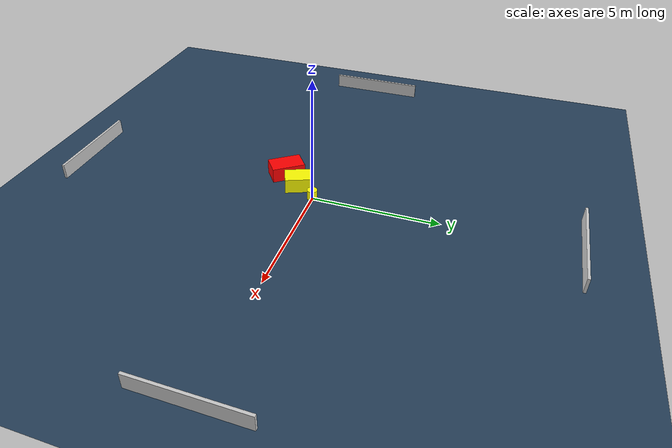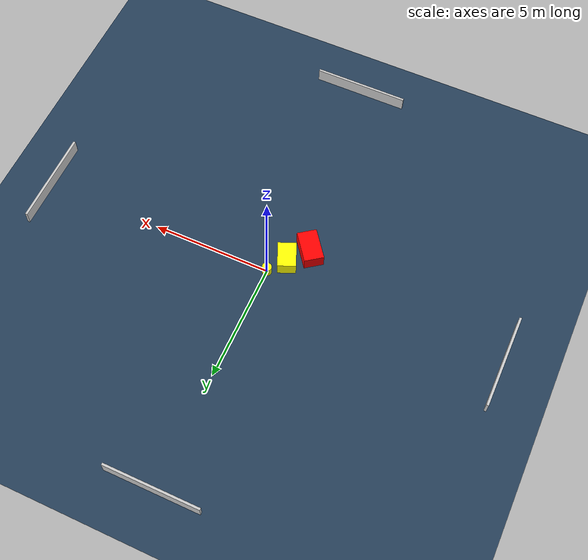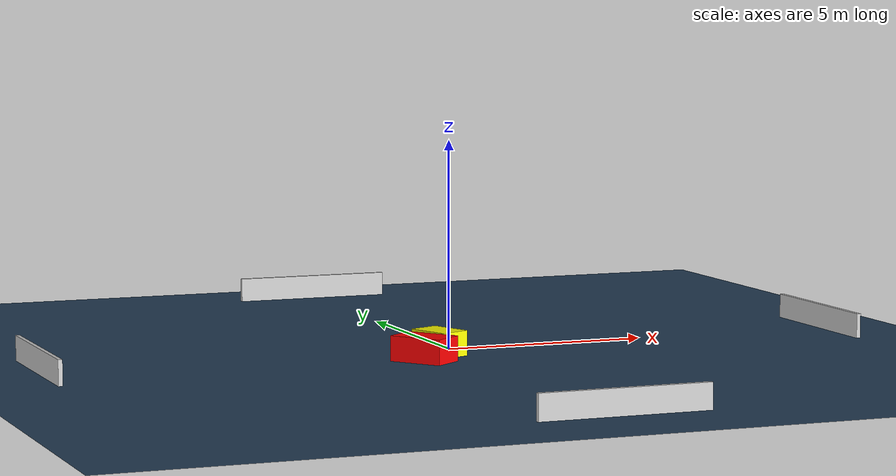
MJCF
<?xml version="1.0" ?>
<mujoco model="generated_environment">
  <option timestep="0.01" integrator="RK4" cone="elliptic"/>
  <default>
    <geom density="1"/>
  </default>
  <asset>
    <texture builtin="gradient" height="3072" name="skybox" rgb1="0.3 0.5 0.7" rgb2="0 0 0" type="skybox" width="512"/>
    <texture builtin="checker" height="300" name="groundplane" rgb1="0.2 0.3 0.4" rgb2="0.1 0.2 0.3" type="2d" width="300"/>
    <material name="groundplane" reflectance="0.2" texrepeat="5 5" texture="groundplane"/>
  </asset>
  <worldbody>
    <light dir="0 0 -1" directional="true" pos="0 0 1.5"/>
    <geom condim="3" friction="0.5 0.005 0.001" material="groundplane" name="floor" pos="0 0 0" size="0 0 0.05" type="plane"/>
    <body name="walls">
      <geom name="wall_1" condim="4" pos="-10.0 0.0 0.3" rgba="0.800000011920929 0.800000011920929 0.800000011920929 1.0" size="0.05 2.0 0.3" type="box"/>
      <geom name="wall_2" condim="4" pos="10.0 0.0 0.3" rgba="0.800000011920929 0.800000011920929 0.800000011920929 1.0" size="0.05 2.0 0.3" type="box"/>
      <geom name="wall_3" condim="4" pos="0.0 -10.0 0.3" rgba="0.800000011920929 0.800000011920929 0.800000011920929 1.0" size="2.0 0.05 0.3" type="box"/>
      <geom name="wall_4" condim="4" pos="0.0 10.0 0.3" rgba="0.800000011920929 0.800000011920929 0.800000011920929 1.0" size="2.0 0.05 0.3" type="box"/>
    </body>
    <body name="robot">
      <joint name="joint_x" type="slide" pos="0 0 0" axis="1 0 0"/>
      <joint name="joint_y" type="slide" pos="0 0 0" axis="0 1 0"/>
      <geom name="robot" type="cylinder" pos="0.0 0.0 0.2" size="0.2 0.2 0.0" mass="5.0" friction="1.0 0.005 0.0001" condim="4" rgba="1.0 1.0 0.0 1.0"/>
    </body>
    <body name="obstacle_1_movable">
      <geom name="obstacle_1_movable" condim="4" pos="-0.5401715397760437 -0.7662231882811428 0.3" euler="0 0 292.73573532227863" friction="0.0 0.005 0.001" rgba="1.0 1.0 0.0 1.0" size="0.5416095643427465 0.38178442951936997 0.3" type="box" mass="0.1"/>
      <joint type="free"/>
    </body>
    <body name="obstacle_2_static">
      <geom name="obstacle_2_static" condim="4" pos="-1.232444470501418 -1.5507031560574158 0.3" euler="0 0 306.8150863007576" friction="0.0 0.005 0.001" rgba="1.0 0.0 0.0 1.0" size="0.6682835128375793 0.41013859947567854 0.3" type="box"/>
    </body>
  </worldbody>
  <actuator>
    <motor name="actuator_x" joint="joint_x" gear="1" ctrlrange="-1 1"/>
    <motor name="actuator_y" joint="joint_y" gear="1" ctrlrange="-1 1"/>
  </actuator>
</mujoco>
